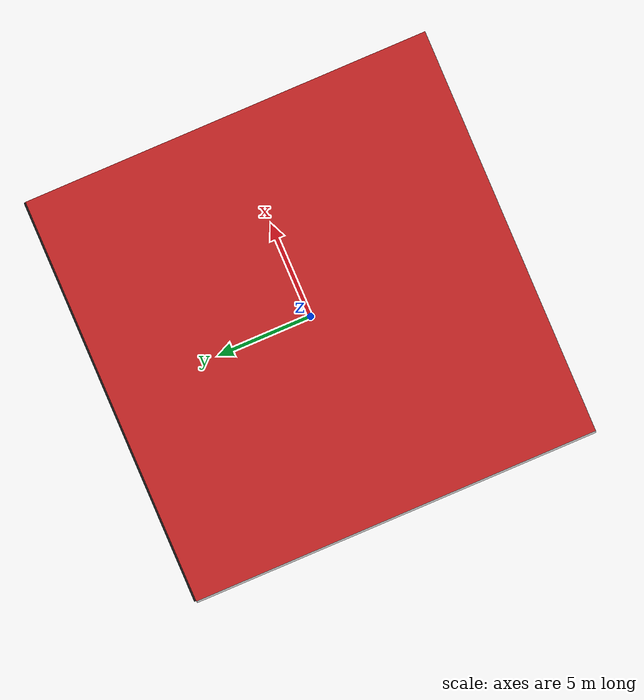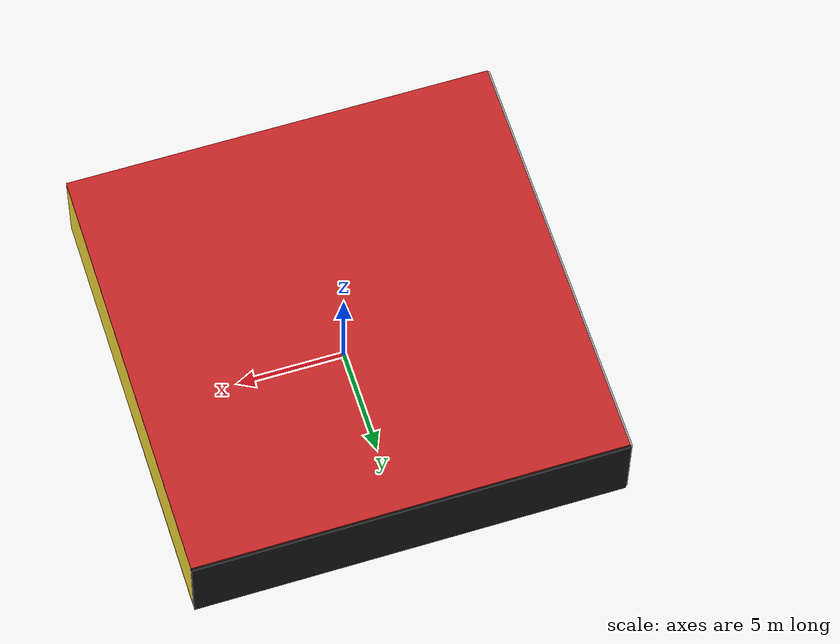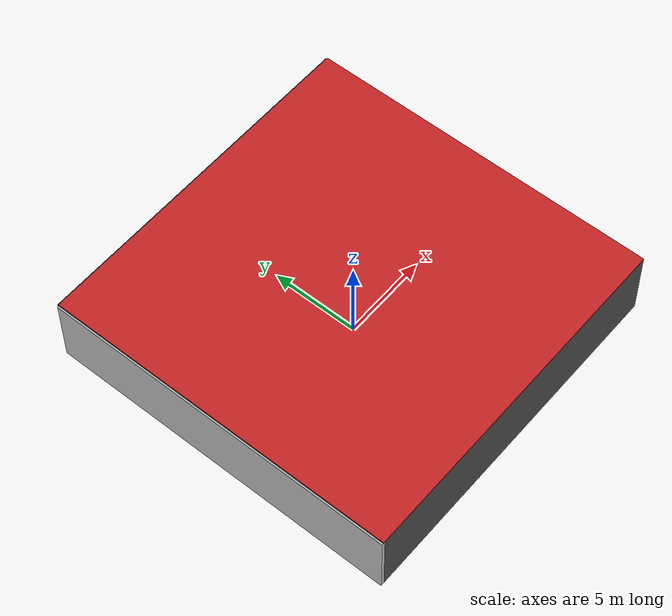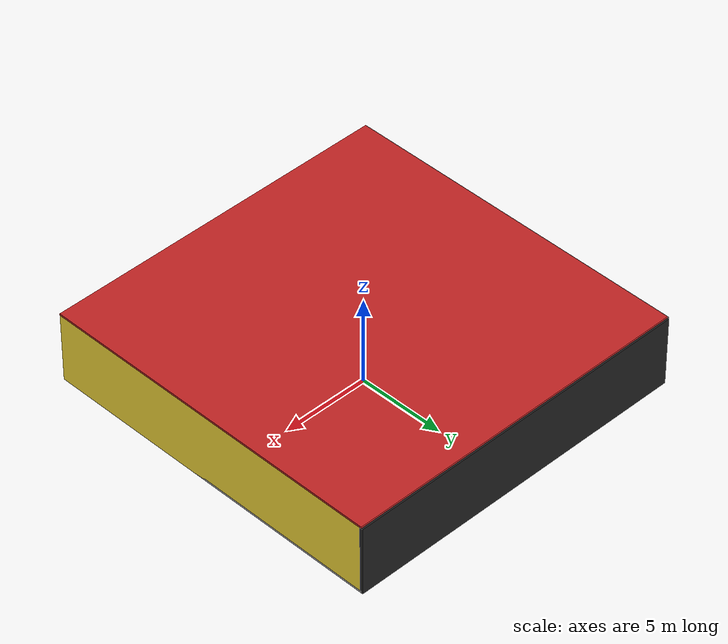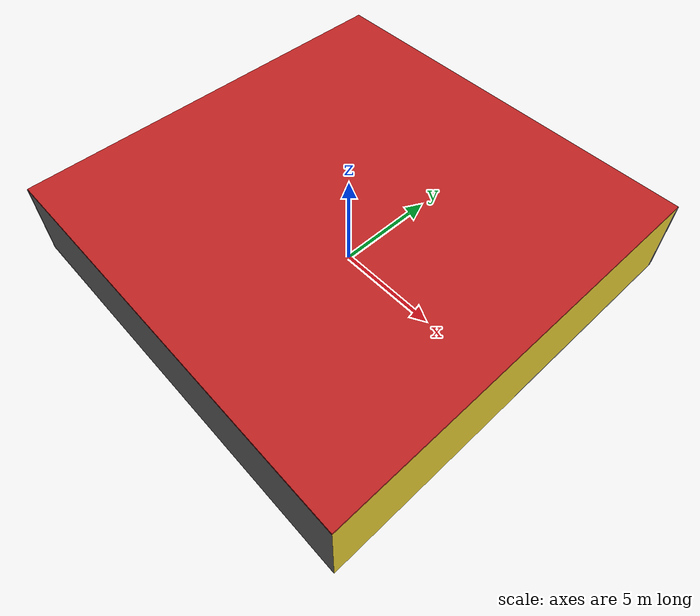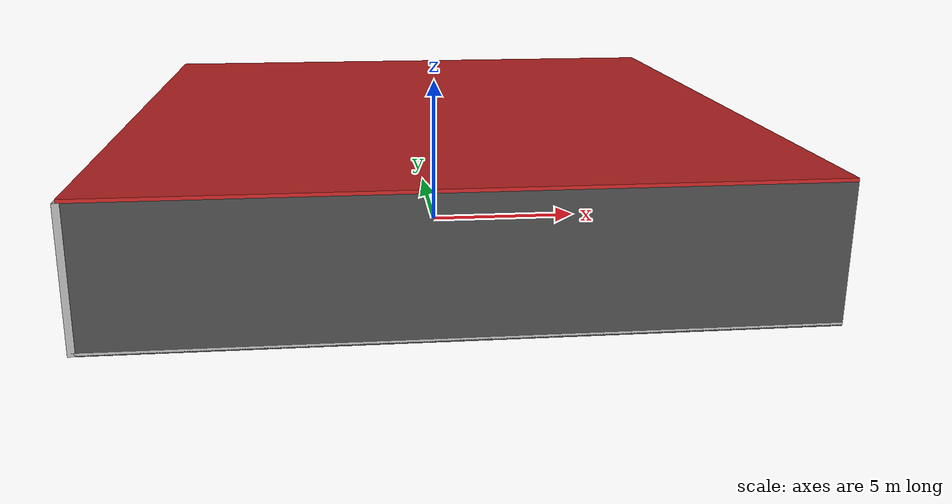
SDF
<sdf version="1.4">
 <world name="default">
  <physics type="ode">
   <max_step_size>0.001</max_step_size>
   <real_time_factor>1</real_time_factor>
   <real_time_update_rate>1000</real_time_update_rate>
   <gravity>0 0 -9.8</gravity>
  </physics>
  <scene><ambient>0.4 0.4 0.4 1</ambient><background>0.7 0.7 0.7 1</background><shadows>1</shadows></scene>
  <model name="Surrounding">
   <static>1</static>
   <link name="Ceiling">
    <collision name="Ceiling_Collision"><geometry><box><size>20 20 0.1</size></box></geometry></collision>
    <visual name="Ceiling_Visual">
     <geometry><box><size>20 20 0.1</size></box></geometry>
     <material>
      <script><uri>file://media/materials/scripts/gazebo.material</uri><name>Gazebo/RedBright</name></script>
     </material>
    </visual>
    <pose>0 0 4.05 0 0 0</pose>
   </link>
   <link name="Wall_South">
    <collision name="Wall_South_Collision">
     <geometry><box><size>20 0 4</size></box></geometry>
     <pose>0 0 2 0 -0 0</pose>
    </collision>
    <visual name="Wall_South_Visual">
     <pose>0 0 2 0 -0 0</pose>
     <geometry><box><size>20 0 4</size></box></geometry>
     <material>
      <script><uri>file://media/materials/scripts/gazebo.material</uri><name>Gazebo/Road</name></script>
     </material>
    </visual>
    <velocity_decay><linear>0</linear><angular>0</angular></velocity_decay>
    <pose>0 -10 0 0 -0 0</pose>
   </link>
   <link name="Wall_East">
    <collision name="Wall_21_Collision">
     <geometry><box><size>20 0 4</size></box></geometry>
     <pose>0 0 2 0 -0 0</pose>
    </collision>
    <visual name="Wall_21_Visual">
     <pose>0 0 2 0 -0 0</pose>
     <geometry><box><size>20 0 4</size></box></geometry>
     <material>
      <script><uri>file://media/materials/scripts/gazebo.material</uri><name>Gazebo/ZincYellow</name></script>
     </material>
    </visual>
    <velocity_decay><linear>0</linear><angular>0</angular></velocity_decay>
    <pose>10 0 0 0 -0 1.5708</pose>
   </link>
   <link name="Wall_North">
    <collision name="Wall_22_Collision">
     <geometry><box><size>20 0.2 4</size></box></geometry>
     <pose>0 0 2 0 -0 0</pose>
    </collision>
    <visual name="Wall_22_Visual">
     <pose>0 0 2 0 -0 0</pose>
     <geometry><box><size>20 0.2 4</size></box></geometry>
     <material>
      <script><uri>file://media/materials/scripts/gazebo.material</uri><name>Gazebo/Black</name></script>
     </material>
    </visual>
    <velocity_decay><linear>0</linear><angular>0</angular></velocity_decay>
    <pose>0 10 0 0 -0 0</pose>
   </link>
   <link name="Wall_West">
    <collision name="Wall_23_Collision">
     <geometry><box><size>20 0.2 4</size></box></geometry>
     <pose>0 0 2 0 -0 0</pose>
    </collision>
    <visual name="Wall_23_Visual">
     <pose>0 0 2 0 -0 0</pose>
     <geometry><box><size>20 0.2 4</size></box></geometry>
     <material>
      <script><uri>file://media/materials/scripts/gazebo.material</uri><name>Gazebo/CloudySky</name></script>
     </material>
    </visual>
    <velocity_decay><linear>0</linear><angular>0</angular></velocity_decay>
    <pose>-10 0 0 0 0 -1.5708</pose>
   </link>
   <link name="Ground_link">
    <collision name="collision">
     <pose>0 0 .05 0 -0 0</pose>
     <geometry><box><size>20 20 0.1</size></box></geometry>
    </collision>
    <visual name="visual">
     <pose>0 0 .05 0 -0 0</pose>
     <geometry><box><size>20 20 0.1</size></box></geometry>
     <material>
      <script><uri>file://media/materials/scripts/gazebo.material</uri><name>Gazebo/JointAnchor</name></script>
     </material>
    </visual>
   </link>
   <static>1</static>
  </model>
  <spherical_coordinates>
   <surface_model>EARTH_WGS84</surface_model>
   <latitude_deg>0</latitude_deg>
   <longitude_deg>0</longitude_deg>
   <elevation>0</elevation>
   <heading_deg>0</heading_deg>
  </spherical_coordinates>
  <light name="lightball_0" type="diffuse">
   <diffuse>0.8 0.8 0.8 1</diffuse>
   <specular>0.2 0.2 0.2 1</specular>
   <attenuation>
    <range>100</range>
    <constant>0.7</constant>
    <linear>0.01</linear>
    <quadratic>0.001</quadratic>
   </attenuation>
   <direction>-0.5 0.1 -0.9</direction>
   <pose>-6.1514302963 8.27464652687 1.22543456041 0 0 0</pose>
  </light>
  <light name="lightball_1" type="diffuse">
   <diffuse>0.8 0.8 0.8 1</diffuse>
   <specular>0.2 0.2 0.2 1</specular>
   <attenuation>
    <range>100</range>
    <constant>0.7</constant>
    <linear>0.01</linear>
    <quadratic>0.001</quadratic>
   </attenuation>
   <direction>-0.5 0.1 -0.9</direction>
   <pose>-9.04168445559 -0.895755161592 2.2651059755 0 0 0</pose>
  </light>
  <light name="lightball_2" type="diffuse">
   <diffuse>0.8 0.8 0.8 1</diffuse>
   <specular>0.2 0.2 0.2 1</specular>
   <attenuation>
    <range>100</range>
    <constant>0.7</constant>
    <linear>0.01</linear>
    <quadratic>0.001</quadratic>
   </attenuation>
   <direction>-0.5 0.1 -0.9</direction>
   <pose>3.9570076294 -6.09203824952 1.8510141768 0 0 0</pose>
  </light>
  <light name="lightball_3" type="diffuse">
   <diffuse>0.8 0.8 0.8 1</diffuse>
   <specular>0.2 0.2 0.2 1</specular>
   <attenuation>
    <range>100</range>
    <constant>0.7</constant>
    <linear>0.01</linear>
    <quadratic>0.001</quadratic>
   </attenuation>
   <direction>-0.5 0.1 -0.9</direction>
   <pose>-0.693776645998 1.97709728231 3.20803742817 0 0 0</pose>
  </light>
  <light name="lightball_4" type="diffuse">
   <diffuse>0.8 0.8 0.8 1</diffuse>
   <specular>0.2 0.2 0.2 1</specular>
   <attenuation>
    <range>100</range>
    <constant>0.7</constant>
    <linear>0.01</linear>
    <quadratic>0.001</quadratic>
   </attenuation>
   <direction>-0.5 0.1 -0.9</direction>
   <pose>5.63008976648 -0.218856474543 3.38595585324 0 0 0</pose>
  </light>
  <light name="lightball_5" type="diffuse">
   <diffuse>0.8 0.8 0.8 1</diffuse>
   <specular>0.2 0.2 0.2 1</specular>
   <attenuation>
    <range>100</range>
    <constant>0.7</constant>
    <linear>0.01</linear>
    <quadratic>0.001</quadratic>
   </attenuation>
   <direction>-0.5 0.1 -0.9</direction>
   <pose>-5.95104090869 4.51941520837 3.61220228993 0 0 0</pose>
  </light>
  <light name="lightball_6" type="diffuse">
   <diffuse>0.8 0.8 0.8 1</diffuse>
   <specular>0.2 0.2 0.2 1</specular>
   <attenuation>
    <range>100</range>
    <constant>0.7</constant>
    <linear>0.01</linear>
    <quadratic>0.001</quadratic>
   </attenuation>
   <direction>-0.5 0.1 -0.9</direction>
   <pose>1.48355425764 0.492031597288 3.25555840663 0 0 0</pose>
  </light>
  <light name="lightball_7" type="diffuse">
   <diffuse>0.8 0.8 0.8 1</diffuse>
   <specular>0.2 0.2 0.2 1</specular>
   <attenuation>
    <range>100</range>
    <constant>0.7</constant>
    <linear>0.01</linear>
    <quadratic>0.001</quadratic>
   </attenuation>
   <direction>-0.5 0.1 -0.9</direction>
   <pose>0.267866546719 1.74589615867 2.26294841938 0 0 0</pose>
  </light>
  <light name="lightball_8" type="diffuse">
   <diffuse>0.8 0.8 0.8 1</diffuse>
   <specular>0.2 0.2 0.2 1</specular>
   <attenuation>
    <range>100</range>
    <constant>0.7</constant>
    <linear>0.01</linear>
    <quadratic>0.001</quadratic>
   </attenuation>
   <direction>-0.5 0.1 -0.9</direction>
   <pose>-5.92155442106 1.22411532921 2.61005824457 0 0 0</pose>
  </light>
  <include>
   <uri>model://robocup_3Dsim_goal</uri>
   <pose>-8.2622146158 -8.2688942437 0 0 0 0.844461980253</pose>
  </include>
  <include>
   <uri>model://robocup_3Dsim_goal</uri>
   <pose>-4.37689730726 -7.02504622122 0 0 0 2.46511161128</pose>
  </include>
  <include>
   <uri>model://textured_shapes</uri>
   <pose>-4.90588770882 -3.71026220705 0 0 0 2.71784218199</pose>
  </include>
  <include>
   <uri>model://construction_cone</uri>
   <pose>-2.08892591855 3.97583319495 0 0 0 1.31472854114</pose>
  </include>
  <include>
   <uri>model://textured_shapes</uri>
   <pose>1.49576682568 1.60645326513 0 0 0 2.68589361789</pose>
  </include>
  <include>
   <uri>model://robocup_3Dsim_goal</uri>
   <pose>8.21479295432 -8.09693078639 0 0 0 1.93661158195</pose>
  </include>
  <include><uri>model://cabinet</uri><pose>8.27243598137 -5.26385535511 0 0 0 2.06283697205</pose></include>
  <include>
   <uri>model://robocup_3Dsim_goal</uri>
   <pose>7.13546472304 4.39544175224 0 0 0 0.244980625031</pose>
  </include>
 </world>
</sdf>

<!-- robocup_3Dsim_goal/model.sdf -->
<sdf version="1.5">
  <model name="robocup_3d_goal">
    <static>true</static>
    <link name="left_post">
      <pose>0 1.05 0.45 0 0 0</pose>
      <collision name="collision">
        <geometry>
          <cylinder>
            <radius>0.05</radius>
            <length>0.9</length>
          </cylinder>
        </geometry>
      </collision>
      <visual name="visual">
        <geometry>
          <cylinder>
            <radius>0.05</radius>
            <length>0.9</length>
          </cylinder>
        </geometry>
        <material>
          <script>
            <uri>file://media/materials/scripts/gazebo.material</uri>
            <name>Gazebo/ZincYellow</name>
          </script>
        </material>
      </visual>
    </link>
    <link name="left_support_horiz_lower">
      <pose>0.30 1.05 0.01 0 0 0</pose>
      <collision name="collision">
        <geometry>
          <box>
            <size>0.50 0.02 0.02</size>
          </box>
        </geometry>
      </collision>
      <visual name="visual">
        <geometry>
          <box>
            <size>0.50 0.02 0.02</size>
          </box>
        </geometry>
        <material>
          <script>
            <uri>file://media/materials/scripts/gazebo.material</uri>
            <name>Gazebo/White</name>
          </script>
        </material>
      </visual>
    </link>
    <link name="left_support_horiz_upper">
      <pose>0.30 1.05 0.79 0 0 0</pose>
      <collision name="collision">
        <geometry>
          <box>
            <size>0.50 0.02 0.02</size>
          </box>
        </geometry>
      </collision>
      <visual name="visual">
        <geometry>
          <box>
            <size>0.50 0.02 0.02</size>
          </box>
        </geometry>
        <material>
          <script>
            <uri>file://media/materials/scripts/gazebo.material</uri>
            <name>Gazebo/White</name>
          </script>
        </material>
      </visual>
    </link>
    <link name="left_support_vertical">
      <pose>0.56 1.05 0.4 0 1.5708 0</pose>
      <collision name="collision">
        <geometry>
          <box>
            <size>0.80 0.02 0.02</size>
          </box>
        </geometry>
      </collision>
      <visual name="visual">
        <geometry>
          <box>
            <size>0.80 0.02 0.02</size>
          </box>
        </geometry>
        <material>
          <script>
            <uri>file://media/materials/scripts/gazebo.material</uri>
            <name>Gazebo/White</name>
          </script>
        </material>
      </visual>
    </link>
    <link name="right_support_horiz_lower">
      <pose>0.30 -1.05 0.01 0 0 0</pose>
      <collision name="collision">
        <geometry>
          <box>
            <size>0.50 0.02 0.02</size>
          </box>
        </geometry>
      </collision>
      <visual name="visual">
        <geometry>
          <box>
            <size>0.50 0.02 0.02</size>
          </box>
        </geometry>
        <material>
          <script>
            <uri>file://media/materials/scripts/gazebo.material</uri>
            <name>Gazebo/White</name>
          </script>
        </material>
      </visual>
    </link>
    <link name="right_support_horiz_upper">
      <pose>0.30 -1.05 0.79 0 0 0</pose>
      <collision name="collision">
        <geometry>
          <box>
            <size>0.50 0.02 0.02</size>
          </box>
        </geometry>
      </collision>
      <visual name="visual">
        <geometry>
          <box>
            <size>0.50 0.02 0.02</size>
          </box>
        </geometry>
        <material>
          <script>
            <uri>file://media/materials/scripts/gazebo.material</uri>
            <name>Gazebo/White</name>
          </script>
        </material>
      </visual>
    </link>
    <link name="right_support_vertical">
      <pose>0.56 -1.05 0.4 0 1.5708 0</pose>
      <collision name="collision">
        <geometry>
          <box>
            <size>0.80 0.02 0.02</size>
          </box>
        </geometry>
      </collision>
      <visual name="visual">
        <geometry>
          <box>
            <size>0.80 0.02 0.02</size>
          </box>
        </geometry>
        <material>
          <script>
            <uri>file://media/materials/scripts/gazebo.material</uri>
            <name>Gazebo/White</name>
          </script>
        </material>
      </visual>
    </link>
    <link name="center_support_horiz_lower">
      <pose>0.56 0 0.01 0 1.5708 0</pose>
      <collision name="collision">
        <geometry>
          <box>
            <size>0.02 2.08 0.02</size>
          </box>
        </geometry>
      </collision>
      <visual name="visual">
        <geometry>
          <box>
            <size>0.02 2.08 0.02</size>
          </box>
        </geometry>
        <material>
          <script>
            <uri>file://media/materials/scripts/gazebo.material</uri>
            <name>Gazebo/White</name>
          </script>
        </material>
      </visual>
    </link>
    <link name="center_support_horiz_upper">
      <pose>0.56 0 0.79 0 1.5708 0</pose>
      <collision name="collision">
        <geometry>
          <box>
            <size>0.02 2.08 0.02</size>
          </box>
        </geometry>
      </collision>
      <visual name="visual">
        <geometry>
          <box>
            <size>0.02 2.08 0.02</size>
          </box>
        </geometry>
        <material>
          <script>
            <uri>file://media/materials/scripts/gazebo.material</uri>
            <name>Gazebo/White</name>
          </script>
        </material>
      </visual>
    </link>
    <link name="right_post">
      <pose>0 -1.05 0.45 0 0 0</pose>
      <collision name="collision">
        <geometry>
          <cylinder>
            <radius>0.05</radius>
            <length>0.9</length>
          </cylinder>
        </geometry>
      </collision>
      <visual name="visual">
        <geometry>
          <cylinder>
            <radius>0.05</radius>
            <length>0.9</length>
          </cylinder>
        </geometry>
        <material>
          <script>
            <uri>file://media/materials/scripts/gazebo.material</uri>
            <name>Gazebo/ZincYellow</name>
          </script>
        </material>
      </visual>
    </link>
    <link name="crossbar">
      <pose>0 0 0.85 1.57 1.57 0</pose>
      <collision name="collision">
        <geometry>
          <cylinder>
            <radius>0.05</radius>
            <length>2.0</length>
          </cylinder>
        </geometry>
      </collision>
      <visual name="visual">
        <geometry>
          <cylinder>
            <radius>0.05</radius>
            <length>2.0</length>
          </cylinder>
        </geometry>
        <material>
          <script>
            <uri>file://media/materials/scripts/gazebo.material</uri>
            <name>Gazebo/ZincYellow</name>
          </script>
        </material>
      </visual>
    </link>
    <link name="center_net">
      <pose>0.56 0 0.40 0 0 0</pose>
      <collision name="collision">
        <geometry>
          <box>
            <size>0.01 2.1 0.80</size>
          </box>
        </geometry>
      </collision>
      <visual name="visual">
        <geometry>
          <box>
            <size>0.01 2.1 0.80</size>
          </box>
        </geometry>
        <material>
          <script>
            <uri>model://../model_source/models/robocup09_spl_field/materials/scripts/</uri>
            <uri>model://../model_source/models/robocup09_spl_field/materials/textures/</uri>
            <name>RoboCup/Net</name>
          </script>
        </material>
      </visual>
    </link>
    <link name="left_net">
      <pose>0.30 1.05 0.40 0 0 0</pose>
      <collision name="collision">
        <geometry>
          <box>
            <size>0.50 0.01 0.76</size>
          </box>
        </geometry>
      </collision>
      <visual name="visual">
        <geometry>
          <box>
            <size>0.50 0.01 0.76</size>
          </box>
        </geometry>
        <material>
          <script>
            <uri>model://../model_source/models/robocup09_spl_field/materials/scripts/</uri>
            <uri>model://../model_source/models/robocup09_spl_field/materials/textures/</uri>
            <name>RoboCup/Net</name>
          </script>
        </material>
      </visual>
    </link>
    <link name="right_net">
      <pose>0.30 -1.05 0.40 0 0 0</pose>
      <collision name="collision">
        <geometry>
          <box>
            <size>0.50 0.01 0.76</size>
          </box>
        </geometry>
      </collision>
      <visual name="visual">
        <geometry>
          <box>
            <size>0.50 0.01 0.76</size>
          </box>
        </geometry>
        <material>
          <script>
            <uri>model://../model_source/models/robocup09_spl_field/materials/scripts/</uri>
            <uri>model://../model_source/models/robocup09_spl_field/materials/textures/</uri>
            <name>RoboCup/Net</name>
          </script>
        </material>
      </visual>
    </link>
  </model>
</sdf>

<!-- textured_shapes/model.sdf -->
<sdf version="1.6">
  <model name="textured_shapes">
    <pose>0 0 0.5 0 0 0</pose>
    <link name="box">
      <pose>0 -1.5 0 0 0 0</pose>
      <collision name="collision">
        <geometry>
          <box>
            <size>1 1 1</size>
          </box>
        </geometry>
      </collision>
      <visual name="visual">
        <geometry>
          <box>
            <size>1 1 1</size>
          </box>
        </geometry>
        <material>
          <script>
            <uri>model://../model_source/models/textured_shapes/materials/scripts</uri>
            <uri>model://../model_source/models/textured_shapes/materials/textures</uri>
            <name>TexturedShape/Squares</name>
          </script>
        </material>
      </visual>
    </link>
    <link name="sphere">
      <collision name="collision">
        <geometry>
          <sphere>
            <radius>0.5</radius>
          </sphere>
        </geometry>
      </collision>
      <visual name="visual">
        <geometry>
          <sphere>
            <radius>0.5</radius>
          </sphere>
        </geometry>
        <material>
          <script>
            <uri>model://../model_source/models/textured_shapes/materials/scripts</uri>
            <uri>model://../model_source/models/textured_shapes/materials/textures</uri>
            <name>TexturedShape/Squares</name>
          </script>
        </material>
      </visual>
    </link>
    <link name="cylinder">
      <pose>0 1.5 0 0 0 0</pose>
      <collision name="collision">
        <geometry>
          <cylinder>
            <radius>0.5</radius>
            <length>1</length>
          </cylinder>
        </geometry>
      </collision>
      <visual name="visual">
        <geometry>
          <cylinder>
            <radius>0.5</radius>
            <length>1</length>
          </cylinder>
        </geometry>
        <material>
          <script>
            <uri>model://../model_source/models/textured_shapes/materials/scripts</uri>
            <uri>model://../model_source/models/textured_shapes/materials/textures</uri>
            <name>TexturedShape/Squares</name>
          </script>
        </material>
      </visual>
    </link>
  </model>
</sdf>

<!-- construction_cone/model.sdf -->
<sdf version="1.5">
  <model name="Construction Cone">
    <link name="link">
      <collision name="collision">
        <geometry>
          <mesh>
            <scale>10 10 10</scale>
            <uri>file://isr-testbed/construction_cone/meshes/construction_cone.dae</uri>
          </mesh>
        </geometry>
      </collision>
      <visual name="visual">
        <geometry>
          <mesh>
            <scale>10 10 10</scale>
            <uri>file://isr-testbed/construction_cone/meshes/construction_cone.dae</uri>
          </mesh>
        </geometry>
      </visual>
    </link>
  </model>
</sdf>

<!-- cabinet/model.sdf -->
<sdf version="1.5">
  <model name="cabinet">
    <static>true</static>
    <link name="cabinet_bottom_plate">
      <inertial>
        <pose>0 0 -1 0 0 0</pose>
        <inertia>
          <ixx>2.050000</ixx>
          <ixy>0</ixy>
          <ixz>0</ixz>
          <iyy>2.050000</iyy>
          <iyz>0</iyz>
          <izz>2.050000</izz>
        </inertia>
        <mass>25.000000</mass>
      </inertial>
      <collision name="cabinet_bottom_plate_geom">
        <pose>0 0 0.010000 0 0 0</pose>
        <geometry>
          <box>
            <size>0.450000 0.450000 0.020000</size>
          </box>
        </geometry>
      </collision>
      <visual name="cabinet_bottom_plate_geom_visual">
        <pose>0 0 0.010000 0 0 0</pose>
        <geometry>
          <box>
            <size>0.450000 0.450000 0.020000</size>
          </box>
        </geometry>
        <material>
          <script>
            <uri>model://media/materials/scripts/gazebo.material</uri>
            <name>Gazebo/Wood</name>
          </script>
        </material>
      </visual>
      <collision name="cabinet_bottom_plate_geom_cabinet_back_plate">
        <pose>0.235000 0 0.510000 0 0 0</pose>
        <geometry>
          <box>
            <size>0.020000 0.450000 1.020000</size>
          </box>
        </geometry>
      </collision>
      <visual name="cabinet_bottom_plate_geom_cabinet_back_plate_visual">
        <pose>0.235000 0 0.510000 0 0 0</pose>
        <geometry>
          <box>
            <size>0.020000 0.450000 1.020000</size>
          </box>
        </geometry>
        <material>
          <script>
            <uri>model://media/materials/scripts/gazebo.material</uri>
            <name>Gazebo/Wood</name>
          </script>
        </material>
      </visual>
      <collision name="cabinet_bottom_plate_geom_cabinet_left_plate">
        <pose>0 0.235000 0.510000 0 0 0</pose>
        <geometry>
          <box>
            <size>0.450000 0.020000 1.020000</size>
          </box>
        </geometry>
      </collision>
      <visual name="cabinet_bottom_plate_geom_cabinet_left_plate_visual">
        <pose>0 0.235000 0.510000 0 0 0</pose>
        <geometry>
          <box>
            <size>0.450000 0.020000 1.020000</size>
          </box>
        </geometry>
        <material>
          <script>
            <uri>model://media/materials/scripts/gazebo.material</uri>
            <name>Gazebo/Wood</name>
          </script>
        </material>
      </visual>
      <collision name="cabinet_bottom_plate_geom_cabinet_middle_plate">
        <pose>0 0 0.510000 0 0 0</pose>
        <geometry>
          <box>
            <size>0.450000 0.450000 0.020000</size>
          </box>
        </geometry>
      </collision>
      <visual name="cabinet_bottom_plate_geom_cabinet_middle_plate_visual">
        <pose>0 0 0.510000 0 0 0</pose>
        <geometry>
          <box>
            <size>0.450000 0.450000 0.020000</size>
          </box>
        </geometry>
        <material>
          <script>
            <uri>model://media/materials/scripts/gazebo.material</uri>
            <name>Gazebo/Wood</name>
          </script>
        </material>
      </visual>
      <collision name="cabinet_bottom_plate_geom_cabinet_right_plate">
        <pose>0 -0.235000 0.510000 0 0 0</pose>
        <geometry>
          <box>
            <size>0.450000 0.020000 1.020000</size>
          </box>
        </geometry>
      </collision>
      <visual name="cabinet_bottom_plate_geom_cabinet_right_plate_visual">
        <pose>0 -0.235000 0.510000 0 0 0</pose>
        <geometry>
          <box>
            <size>0.450000 0.020000 1.020000</size>
          </box>
        </geometry>
        <material>
          <script>
            <uri>model://media/materials/scripts/gazebo.material</uri>
            <name>Gazebo/Wood</name>
          </script>
        </material>
      </visual>
      <collision name="cabinet_bottom_plate_geom_cabinet_top_plate">
        <pose>0 0 1.010000 0 0 0</pose>
        <geometry>
          <box>
            <size>0.450000 0.450000 0.020000</size>
          </box>
        </geometry>
      </collision>
      <visual name="cabinet_bottom_plate_geom_cabinet_top_plate_visual">
        <pose>0 0 1.010000 0 0 0</pose>
        <geometry>
          <box>
            <size>0.450000 0.450000 0.020000</size>
          </box>
        </geometry>
        <material>
          <script>
            <uri>model://media/materials/scripts/gazebo.material</uri>
            <name>Gazebo/Wood</name>
          </script>
        </material>
      </visual>
    </link>
  </model>
</sdf>
